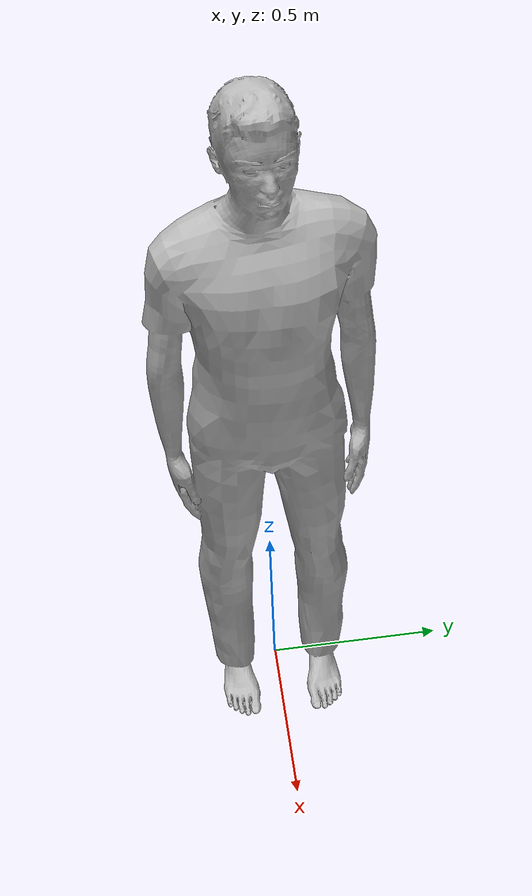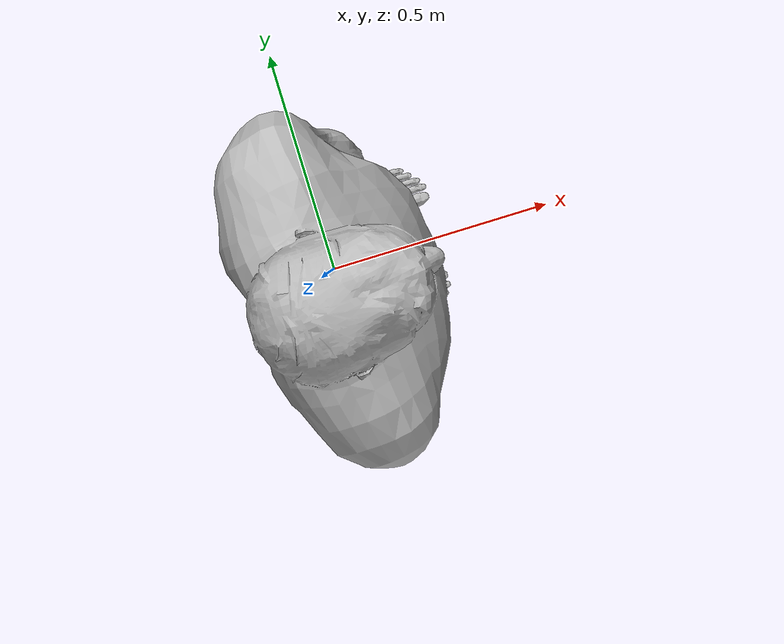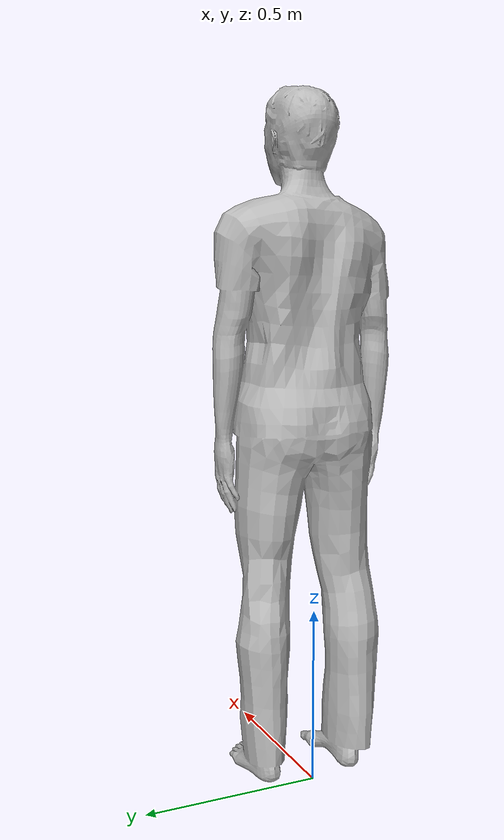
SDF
<?xml version="1.0" ?>
<sdf version="1.5">
  <model name="person_standing">
    <link name="link">
      <inertial>
        <pose>0 0 0.95 0 0 0</pose>
        <mass>80.0</mass>
        <inertia>
          <ixx>24.88</ixx>
          <ixy>0</ixy>
          <ixz>0</ixz>
          <iyy>25.73</iyy>
          <iyz>0</iyz>
          <izz>2.48</izz>
        </inertia>
      </inertial>

      <collision name="bottom">
        <pose>0 0 0.01 0 0 1.57</pose>
        <geometry>
          <box>
            <size>0.5 0.35 0.02</size>
          </box>
        </geometry>
      </collision>

      <collision name="person">
        <pose>0 0 0.92 0 0 0</pose>
        <geometry>
          <cylinder>
            <radius>0.15</radius>
            <length>1.8</length>
          </cylinder>
        </geometry>
        <surface>
          <contact>
            <collide_without_contact>true</collide_without_contact>
          </contact>
        </surface>
      </collision>

      <visual name="visual">
        <pose>0 0 0.02 0.04 0 1.57</pose>
        <geometry>
          <mesh>
            <uri>model://person_standing/meshes/standing.dae</uri>
          </mesh>
        </geometry>
      </visual>
    </link>
  </model>
</sdf>
